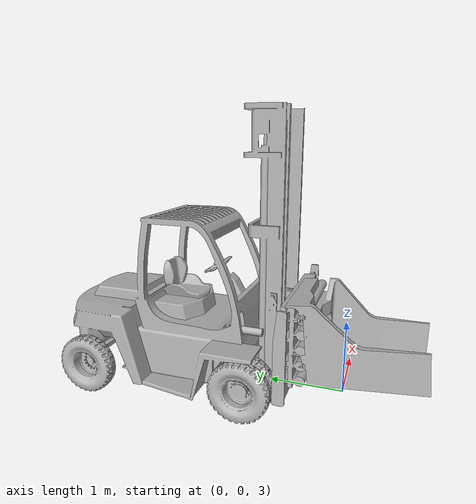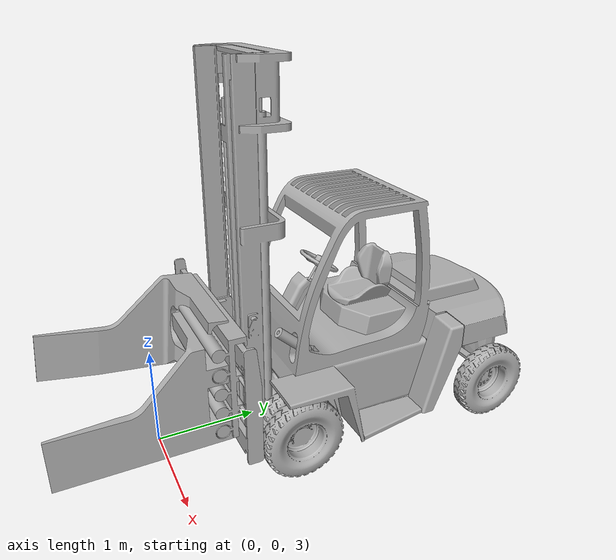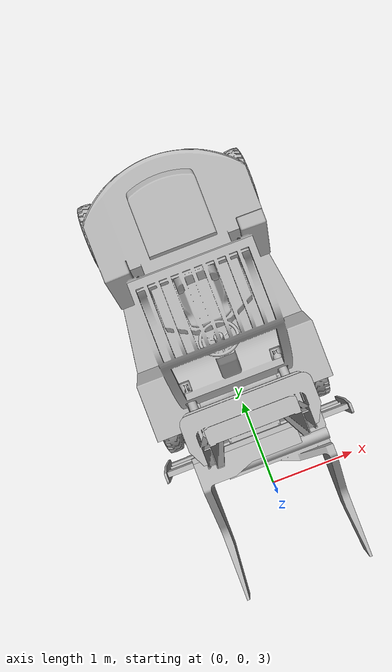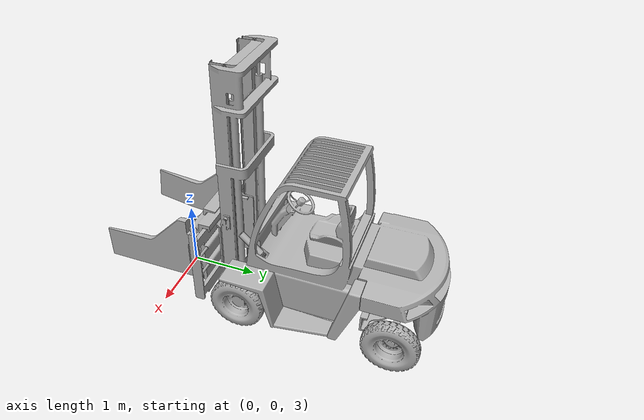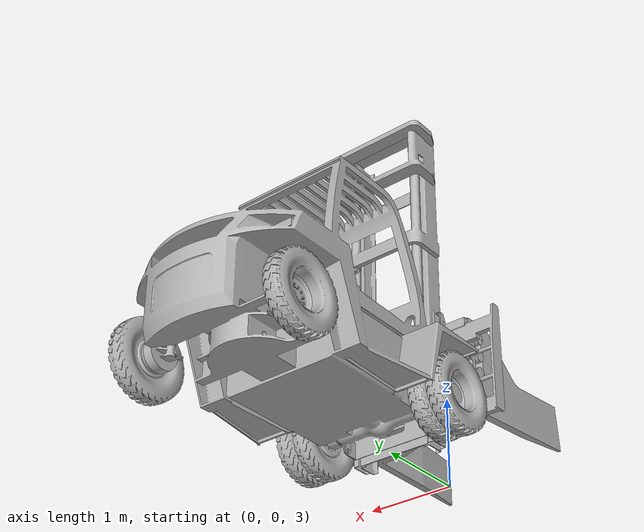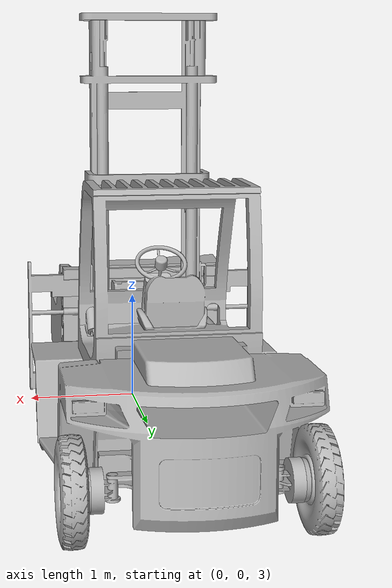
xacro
<?xml version="1.0" ?>
<robot name="Hyster" xmlns:xacro="http://www.ros.org/wiki/xacro">

<xacro:include filename="$(find Hyster_description)/urdf/materials.xacro" />
<xacro:include filename="$(find Hyster_description)/urdf/Hyster.ros2control" />
<xacro:include filename="$(find Hyster_description)/urdf/Hyster.gazebo" />
<link name="base_link">
  <inertial>
    <origin xyz="-0.0004925789832203201 2.4769998313137425 3.690590684581383" rpy="0 0 0"/>
    <mass value="23179.86410500836"/>
    <inertia ixx="15802.894967" iyy="6615.204083" izz="15731.294384" ixy="-5.906617" iyz="-417.72686" ixz="-7.661882"/>
  </inertial>
  <visual>
    <origin xyz="0 0 0" rpy="0 0 0"/>
    <geometry>
      <mesh filename="file://$(find Hyster_description)/meshes/base_link.stl" scale="0.001 0.001 0.001"/>
    </geometry>
    <material name="silver"/>
  </visual>
  <collision>
    <origin xyz="0 0 0" rpy="0 0 0"/>
    <geometry>
      <mesh filename="file://$(find Hyster_description)/meshes/base_link.stl" scale="0.001 0.001 0.001"/>
    </geometry>
  </collision>
</link>

<link name="Base_das_garras_1">
  <inertial>
    <origin xyz="-1.0174100000000017 -0.0981366269746784 -0.08426486939488775" rpy="0 0 0"/>
    <mass value="1588.2579982955185"/>
    <inertia ixx="151.93722" iyy="421.827021" izz="286.662272" ixy="-0.0" iyz="-5.908384" ixz="0.0"/>
  </inertial>
  <visual>
    <origin xyz="-1.01632 -0.616947 -3.972451" rpy="0 0 0"/>
    <geometry>
      <mesh filename="file://$(find Hyster_description)/meshes/Base_das_garras_1.stl" scale="0.001 0.001 0.001"/>
    </geometry>
    <material name="silver"/>
  </visual>
  <collision>
    <origin xyz="-1.01632 -0.616947 -3.972451" rpy="0 0 0"/>
    <geometry>
      <mesh filename="file://$(find Hyster_description)/meshes/Base_das_garras_1.stl" scale="0.001 0.001 0.001"/>
    </geometry>
  </collision>
</link>

<link name="3._Frame_-_2_1">
  <inertial>
    <origin xyz="1.4162614780635594 -4.987760374523981 0.7954257791514321" rpy="0 0 0"/>
    <mass value="274.26551036234616"/>
    <inertia ixx="371.186685" iyy="406.150315" izz="40.184754" ixy="-0.002197" iyz="-7.886965" ixz="0.003937"/>
  </inertial>
  <visual>
    <origin xyz="1.416773 -5.907135 -4.36998" rpy="0 0 0"/>
    <geometry>
      <mesh filename="file://$(find Hyster_description)/meshes/3._Frame_-_2_1.stl" scale="0.001 0.001 0.001"/>
    </geometry>
    <material name="silver"/>
  </visual>
  <collision>
    <origin xyz="1.416773 -5.907135 -4.36998" rpy="0 0 0"/>
    <geometry>
      <mesh filename="file://$(find Hyster_description)/meshes/3._Frame_-_2_1.stl" scale="0.001 0.001 0.001"/>
    </geometry>
  </collision>
</link>

<link name="Frame_1_1">
  <inertial>
    <origin xyz="0.45235358619699945 -0.07575010556847905 2.1370345537146167" rpy="0 0 0"/>
    <mass value="786.0759725054191"/>
    <inertia ixx="838.620131" iyy="958.544532" izz="141.548426" ixy="0.206413" iyz="-37.464087" ixz="-0.034091"/>
  </inertial>
  <visual>
    <origin xyz="0.45175 -1.105433 -3.11971" rpy="0 0 0"/>
    <geometry>
      <mesh filename="file://$(find Hyster_description)/meshes/Frame_1_1.stl" scale="0.001 0.001 0.001"/>
    </geometry>
    <material name="silver"/>
  </visual>
  <collision>
    <origin xyz="0.45175 -1.105433 -3.11971" rpy="0 0 0"/>
    <geometry>
      <mesh filename="file://$(find Hyster_description)/meshes/Frame_1_1.stl" scale="0.001 0.001 0.001"/>
    </geometry>
  </collision>
</link>

<link name="Base_deslizante_1">
  <inertial>
    <origin xyz="0.0005899998492182473 -0.7809302774388625 -5.52840075585603" rpy="0 0 0"/>
    <mass value="611.9992875961477"/>
    <inertia ixx="100.566337" iyy="306.612743" izz="212.604119" ixy="-0.0" iyz="0.482863" ixz="-0.0"/>
  </inertial>
  <visual>
    <origin xyz="0.00118 -1.454932 -9.320984" rpy="0 0 0"/>
    <geometry>
      <mesh filename="file://$(find Hyster_description)/meshes/Base_deslizante_1.stl" scale="0.001 0.001 0.001"/>
    </geometry>
    <material name="silver"/>
  </visual>
  <collision>
    <origin xyz="0.00118 -1.454932 -9.320984" rpy="0 0 0"/>
    <geometry>
      <mesh filename="file://$(find Hyster_description)/meshes/Base_deslizante_1.stl" scale="0.001 0.001 0.001"/>
    </geometry>
  </collision>
</link>

<link name="Left_front_wheel_1">
  <inertial>
    <origin xyz="-0.3141501086785135 -3.5293322264706717e-07 1.2163996072622751e-06" rpy="0 0 0"/>
    <mass value="1255.0748898156764"/>
    <inertia ixx="106.011711" iyy="70.775652" izz="70.775518" ixy="0.000114" iyz="7.7e-05" ixz="0.0001"/>
  </inertial>
  <visual>
    <origin xyz="0.4705 -1.170433 -3.26971" rpy="0 0 0"/>
    <geometry>
      <mesh filename="file://$(find Hyster_description)/meshes/Left_front_wheel_1.stl" scale="0.001 0.001 0.001"/>
    </geometry>
    <material name="silver"/>
  </visual>
  <collision>
    <origin xyz="0.4705 -1.170433 -3.26971" rpy="0 0 0"/>
    <geometry>
      <mesh filename="file://$(find Hyster_description)/meshes/Left_front_wheel_1.stl" scale="0.001 0.001 0.001"/>
    </geometry>
  </collision>
</link>

<link name="Right_front_wheel_1">
  <inertial>
    <origin xyz="0.31415737290690954 8.302154363981629e-08 1.8685303437848688e-07" rpy="0 0 0"/>
    <mass value="1255.245028420145"/>
    <inertia ixx="106.013616" iyy="70.776839" izz="70.776864" ixy="-4.4e-05" iyz="-3.9e-05" ixz="9e-06"/>
  </inertial>
  <visual>
    <origin xyz="-0.4705 -1.170433 -3.26971" rpy="0 0 0"/>
    <geometry>
      <mesh filename="file://$(find Hyster_description)/meshes/Right_front_wheel_1.stl" scale="0.001 0.001 0.001"/>
    </geometry>
    <material name="silver"/>
  </visual>
  <collision>
    <origin xyz="-0.4705 -1.170433 -3.26971" rpy="0 0 0"/>
    <geometry>
      <mesh filename="file://$(find Hyster_description)/meshes/Right_front_wheel_1.stl" scale="0.001 0.001 0.001"/>
    </geometry>
  </collision>
</link>

<link name="Left_rear_wheel_1">
  <inertial>
    <origin xyz="-0.11874149685492552 -7.711468974491709e-08 -1.374510847362842e-07" rpy="0 0 0"/>
    <mass value="572.9237330542088"/>
    <inertia ixx="52.533082" iyy="27.997105" izz="27.99706" ixy="-3e-06" iyz="-9e-06" ixz="-4e-06"/>
  </inertial>
  <visual>
    <origin xyz="0.777 -3.405433 -3.26421" rpy="0 0 0"/>
    <geometry>
      <mesh filename="file://$(find Hyster_description)/meshes/Left_rear_wheel_1.stl" scale="0.001 0.001 0.001"/>
    </geometry>
    <material name="silver"/>
  </visual>
  <collision>
    <origin xyz="0.777 -3.405433 -3.26421" rpy="0 0 0"/>
    <geometry>
      <mesh filename="file://$(find Hyster_description)/meshes/Left_rear_wheel_1.stl" scale="0.001 0.001 0.001"/>
    </geometry>
  </collision>
</link>

<link name="Right_rear_wheel_1">
  <inertial>
    <origin xyz="0.11874147941052993 1.0383174187111877e-07 1.681661996322248e-07" rpy="0 0 0"/>
    <mass value="572.9262498031871"/>
    <inertia ixx="52.533409" iyy="27.997252" izz="27.997262" ixy="-6e-06" iyz="-7e-06" ixz="2e-06"/>
  </inertial>
  <visual>
    <origin xyz="-0.777 -3.405433 -3.26421" rpy="0 0 0"/>
    <geometry>
      <mesh filename="file://$(find Hyster_description)/meshes/Right_rear_wheel_1.stl" scale="0.001 0.001 0.001"/>
    </geometry>
    <material name="silver"/>
  </visual>
  <collision>
    <origin xyz="-0.777 -3.405433 -3.26421" rpy="0 0 0"/>
    <geometry>
      <mesh filename="file://$(find Hyster_description)/meshes/Right_rear_wheel_1.stl" scale="0.001 0.001 0.001"/>
    </geometry>
  </collision>
</link>

<link name="10.Right__Hub_1">
  <inertial>
    <origin xyz="0.10676222612247532 -0.001134425302500297 -0.11416074168174717" rpy="0 0 0"/>
    <mass value="74.42878224447517"/>
    <inertia ixx="0.917356" iyy="0.631169" izz="0.619987" ixy="-0.007037" iyz="-7.1e-05" ixz="0.006668"/>
  </inertial>
  <visual>
    <origin xyz="-0.607 -3.405433 -3.37921" rpy="0 0 0"/>
    <geometry>
      <mesh filename="file://$(find Hyster_description)/meshes/10.Right__Hub_1.stl" scale="0.001 0.001 0.001"/>
    </geometry>
    <material name="silver"/>
  </visual>
  <collision>
    <origin xyz="-0.607 -3.405433 -3.37921" rpy="0 0 0"/>
    <geometry>
      <mesh filename="file://$(find Hyster_description)/meshes/10.Right__Hub_1.stl" scale="0.001 0.001 0.001"/>
    </geometry>
  </collision>
</link>

<link name="10._Left_Hub2_1">
  <inertial>
    <origin xyz="-0.10676222612247543 -0.001134425302500297 -0.11416074168174717" rpy="0 0 0"/>
    <mass value="74.42878224447499"/>
    <inertia ixx="0.917356" iyy="0.631169" izz="0.619987" ixy="0.007037" iyz="-7.1e-05" ixz="-0.006668"/>
  </inertial>
  <visual>
    <origin xyz="0.607 -3.405433 -3.37921" rpy="0 0 0"/>
    <geometry>
      <mesh filename="file://$(find Hyster_description)/meshes/10._Left_Hub2_1.stl" scale="0.001 0.001 0.001"/>
    </geometry>
    <material name="silver"/>
  </visual>
  <collision>
    <origin xyz="0.607 -3.405433 -3.37921" rpy="0 0 0"/>
    <geometry>
      <mesh filename="file://$(find Hyster_description)/meshes/10._Left_Hub2_1.stl" scale="0.001 0.001 0.001"/>
    </geometry>
  </collision>
</link>

<link name="Garra_1_1">
  <inertial>
    <origin xyz="0.25314091830770374 -0.34996483420745594 -0.41637599264107417" rpy="0 0 0"/>
    <mass value="980.1329836469724"/>
    <inertia ixx="237.854536" iyy="187.973293" izz="244.401542" ixy="-64.814959" iyz="-53.91832" ixz="-31.272353"/>
  </inertial>
  <visual>
    <origin xyz="0.72609 -0.45169 -4.25807" rpy="0 0 0"/>
    <geometry>
      <mesh filename="file://$(find Hyster_description)/meshes/Garra_1_1.stl" scale="0.001 0.001 0.001"/>
    </geometry>
    <material name="silver"/>
  </visual>
  <collision>
    <origin xyz="0.72609 -0.45169 -4.25807" rpy="0 0 0"/>
    <geometry>
      <mesh filename="file://$(find Hyster_description)/meshes/Garra_1_1.stl" scale="0.001 0.001 0.001"/>
    </geometry>
  </collision>
</link>

<link name="Garra_2_1">
  <inertial>
    <origin xyz="-0.2531499051288749 -0.3499413415582662 0.2701843477564001" rpy="0 0 0"/>
    <mass value="980.059358014733"/>
    <inertia ixx="221.549361" iyy="171.683869" izz="244.376384" ixy="64.809121" iyz="-19.970136" ixz="0.01832"/>
  </inertial>
  <visual>
    <origin xyz="-0.72391 -0.45169 -3.45807" rpy="0 0 0"/>
    <geometry>
      <mesh filename="file://$(find Hyster_description)/meshes/Garra_2_1.stl" scale="0.001 0.001 0.001"/>
    </geometry>
    <material name="silver"/>
  </visual>
  <collision>
    <origin xyz="-0.72391 -0.45169 -3.45807" rpy="0 0 0"/>
    <geometry>
      <mesh filename="file://$(find Hyster_description)/meshes/Garra_2_1.stl" scale="0.001 0.001 0.001"/>
    </geometry>
  </collision>
</link>

<link name="13._Cylinder_-_1_1_2_1">
  <inertial>
    <origin xyz="2.220446049250313e-16 -0.19411720247653874 0.13227000062779704" rpy="0 0 0"/>
    <mass value="21.72488855838382"/>
    <inertia ixx="0.337856" iyy="0.127821" izz="0.24018" ixy="0.0" iyz="0.142914" ixz="-0.0"/>
  </inertial>
  <visual>
    <origin xyz="-0.527625 -1.425994 -3.935058" rpy="0 0 0"/>
    <geometry>
      <mesh filename="file://$(find Hyster_description)/meshes/13._Cylinder_-_1_1_2_1.stl" scale="0.001 0.001 0.001"/>
    </geometry>
    <material name="silver"/>
  </visual>
  <collision>
    <origin xyz="-0.527625 -1.425994 -3.935058" rpy="0 0 0"/>
    <geometry>
      <mesh filename="file://$(find Hyster_description)/meshes/13._Cylinder_-_1_1_2_1.stl" scale="0.001 0.001 0.001"/>
    </geometry>
  </collision>
</link>

<link name="15._Cylinder_-_1_1__1">
  <inertial>
    <origin xyz="-1.1102230246251565e-16 -0.19411720247652253 0.13227000062782102" rpy="0 0 0"/>
    <mass value="21.72488855838382"/>
    <inertia ixx="0.337856" iyy="0.127821" izz="0.24018" ixy="-0.0" iyz="0.142914" ixz="-0.0"/>
  </inertial>
  <visual>
    <origin xyz="0.527625 -1.425994 -3.935058" rpy="0 0 0"/>
    <geometry>
      <mesh filename="file://$(find Hyster_description)/meshes/15._Cylinder_-_1_1__1.stl" scale="0.001 0.001 0.001"/>
    </geometry>
    <material name="silver"/>
  </visual>
  <collision>
    <origin xyz="0.527625 -1.425994 -3.935058" rpy="0 0 0"/>
    <geometry>
      <mesh filename="file://$(find Hyster_description)/meshes/15._Cylinder_-_1_1__1.stl" scale="0.001 0.001 0.001"/>
    </geometry>
  </collision>
</link>

<joint name="Rigid 3" type="fixed">
  <origin xyz="1.0175 -0.837985 -5.348533" rpy="0 0 0"/>
  <parent link="Base_deslizante_1"/>
  <child link="Base_das_garras_1"/>
</joint>

<joint name="Slider 4" type="prismatic">
  <origin xyz="-0.965023 4.801702 1.25027" rpy="0 0 0"/>
  <parent link="Frame_1_1"/>
  <child link="3._Frame_-_2_1"/>
  <axis xyz="0.0 -0.0 1.0"/>
  <limit upper="2.65" lower="-0.22" effort="100" velocity="100"/>
</joint>

<joint name="Revolute 5" type="revolute">
  <origin xyz="-0.45175 1.105433 3.11971" rpy="0 0 0"/>
  <parent link="base_link"/>
  <child link="Frame_1_1"/>
  <axis xyz="-1.0 0.0 0.0"/>
  <limit upper="0.174533" lower="-0.087266" effort="100" velocity="100"/>
</joint>

<joint name="Slider 10" type="prismatic">
  <origin xyz="1.415593 -4.452203 4.951004" rpy="0 0 0"/>
  <parent link="3._Frame_-_2_1"/>
  <child link="Base_deslizante_1"/>
  <axis xyz="-0.0 0.0 -1.0"/>
  <limit upper="0.25" lower="-2.3" effort="100" velocity="100"/>
</joint>

<joint name="Revolute 11" type="continuous">
  <origin xyz="-0.4705 1.170433 3.26971" rpy="0 0 0"/>
  <parent link="base_link"/>
  <child link="Left_front_wheel_1"/>
  <axis xyz="1.0 0.0 0.0"/>
</joint>

<joint name="Revolute 12" type="continuous">
  <origin xyz="0.4705 1.170433 3.26971" rpy="0 0 0"/>
  <parent link="base_link"/>
  <child link="Right_front_wheel_1"/>
  <axis xyz="-1.0 0.0 0.0"/>
</joint>

<joint name="Revolute 13" type="continuous">
  <origin xyz="-0.17 0.0 -0.115" rpy="0 0 0"/>
  <parent link="10._Left_Hub2_1"/>
  <child link="Left_rear_wheel_1"/>
  <axis xyz="-1.0 0.0 -0.0"/>
</joint>

<joint name="Revolute 16" type="continuous">
  <origin xyz="0.17 0.0 -0.115" rpy="0 0 0"/>
  <parent link="10.Right__Hub_1"/>
  <child link="Right_rear_wheel_1"/>
  <axis xyz="1.0 -0.0 0.0"/>
</joint>

<joint name="Revolute 35" type="revolute">
  <origin xyz="0.607 3.405433 3.37921" rpy="0 0 0"/>
  <parent link="base_link"/>
  <child link="10.Right__Hub_1"/>
  <axis xyz="0.0 0.0 1.0"/>
  <limit upper="0.349066" lower="-0.261799" effort="100" velocity="100"/>
</joint>

<joint name="Revolute 36" type="revolute">
  <origin xyz="-0.607 3.405433 3.37921" rpy="0 0 0"/>
  <parent link="base_link"/>
  <child link="10._Left_Hub2_1"/>
  <axis xyz="0.0 0.0 1.0"/>
  <limit upper="0.261799" lower="-0.349066" effort="100" velocity="100"/>
</joint>

<joint name="Slider 41" type="prismatic">
  <origin xyz="-1.74241 -0.165257 0.285619" rpy="0 0 0"/>
  <parent link="Base_das_garras_1"/>
  <child link="Garra_1_1"/>
  <axis xyz="-1.0 -0.0 0.0"/>
  <limit upper="0.0" lower="0.0" effort="100" velocity="100"/>
</joint>

<joint name="Slider 42" type="prismatic">
  <origin xyz="-0.29241 -0.165257 -0.514381" rpy="0 0 0"/>
  <parent link="Base_das_garras_1"/>
  <child link="Garra_2_1"/>
  <axis xyz="-1.0 -0.0 0.0"/>
  <limit upper="0.0" lower="0.0" effort="100" velocity="100"/>
</joint>

<joint name="Revolute 50" type="continuous">
  <origin xyz="0.527625 1.425994 3.935058" rpy="0 0 0"/>
  <parent link="base_link"/>
  <child link="13._Cylinder_-_1_1_2_1"/>
  <axis xyz="-1.0 0.0 0.0"/>
</joint>

<joint name="Revolute 52" type="continuous">
  <origin xyz="-0.527625 1.425994 3.935058" rpy="0 0 0"/>
  <parent link="base_link"/>
  <child link="15._Cylinder_-_1_1__1"/>
  <axis xyz="1.0 0.0 0.0"/>
</joint>

</robot>

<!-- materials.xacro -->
<robot name="Hyster" xmlns:xacro="http://www.ros.org/wiki/xacro" >

<material name="silver">
  <color rgba="0.700 0.700 0.700 1.000"/>
</material>

</robot>

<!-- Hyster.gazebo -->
<robot name="Hyster" xmlns:xacro="http://www.ros.org/wiki/xacro" >

<xacro:property name="body_color" value="Gazebo/Silver" />

<gazebo reference="base_link">
  <material>${body_color}</material>
  <mu1>0.2</mu1>
  <mu2>0.2</mu2>
  <self_collide>true</self_collide>
  <gravity>true</gravity>
</gazebo>

<gazebo reference="Base_das_garras_1">
  <material>${body_color}</material>
  <mu1>0.2</mu1>
  <mu2>0.2</mu2>
  <self_collide>true</self_collide>
</gazebo>

<gazebo reference="3._Frame_-_2_1">
  <material>${body_color}</material>
  <mu1>0.2</mu1>
  <mu2>0.2</mu2>
  <self_collide>true</self_collide>
</gazebo>

<gazebo reference="Frame_1_1">
  <material>${body_color}</material>
  <mu1>0.2</mu1>
  <mu2>0.2</mu2>
  <self_collide>true</self_collide>
</gazebo>

<gazebo reference="Base_deslizante_1">
  <material>${body_color}</material>
  <mu1>0.2</mu1>
  <mu2>0.2</mu2>
  <self_collide>true</self_collide>
</gazebo>

<gazebo reference="Left_front_wheel_1">
  <material>${body_color}</material>
  <mu1>0.2</mu1>
  <mu2>0.2</mu2>
  <self_collide>true</self_collide>
</gazebo>

<gazebo reference="Right_front_wheel_1">
  <material>${body_color}</material>
  <mu1>0.2</mu1>
  <mu2>0.2</mu2>
  <self_collide>true</self_collide>
</gazebo>

<gazebo reference="Left_rear_wheel_1">
  <material>${body_color}</material>
  <mu1>0.2</mu1>
  <mu2>0.2</mu2>
  <self_collide>true</self_collide>
</gazebo>

<gazebo reference="Right_rear_wheel_1">
  <material>${body_color}</material>
  <mu1>0.2</mu1>
  <mu2>0.2</mu2>
  <self_collide>true</self_collide>
</gazebo>

<gazebo reference="10.Right__Hub_1">
  <material>${body_color}</material>
  <mu1>0.2</mu1>
  <mu2>0.2</mu2>
  <self_collide>true</self_collide>
</gazebo>

<gazebo reference="10._Left_Hub2_1">
  <material>${body_color}</material>
  <mu1>0.2</mu1>
  <mu2>0.2</mu2>
  <self_collide>true</self_collide>
</gazebo>

<gazebo reference="Garra_1_1">
  <material>${body_color}</material>
  <mu1>0.2</mu1>
  <mu2>0.2</mu2>
  <self_collide>true</self_collide>
</gazebo>

<gazebo reference="Garra_2_1">
  <material>${body_color}</material>
  <mu1>0.2</mu1>
  <mu2>0.2</mu2>
  <self_collide>true</self_collide>
</gazebo>

<gazebo reference="13._Cylinder_-_1_1_2_1">
  <material>${body_color}</material>
  <mu1>0.2</mu1>
  <mu2>0.2</mu2>
  <self_collide>true</self_collide>
</gazebo>

<gazebo reference="15._Cylinder_-_1_1__1">
  <material>${body_color}</material>
  <mu1>0.2</mu1>
  <mu2>0.2</mu2>
  <self_collide>true</self_collide>
</gazebo>

</robot>
